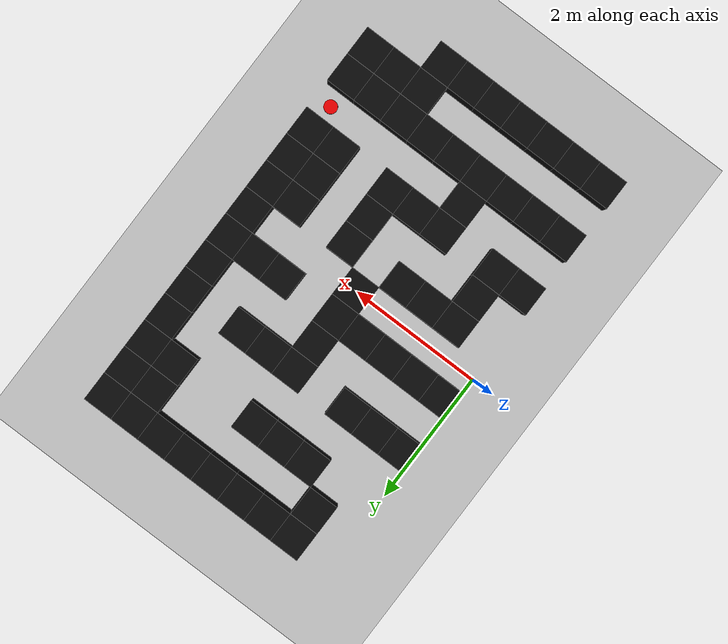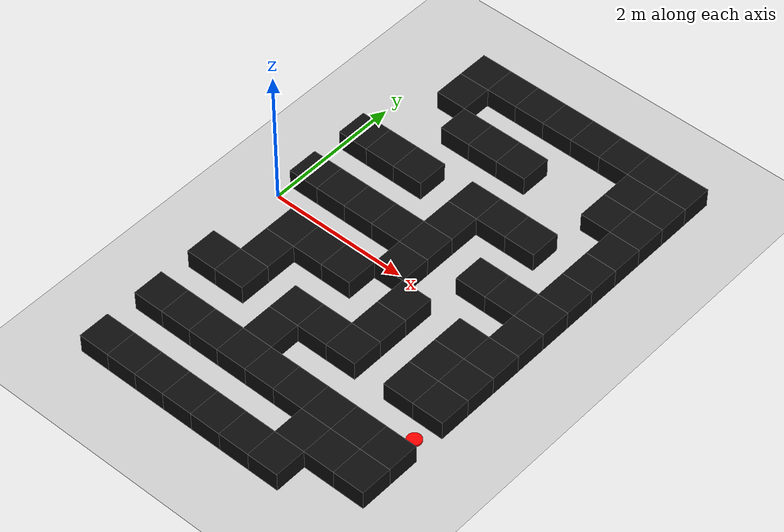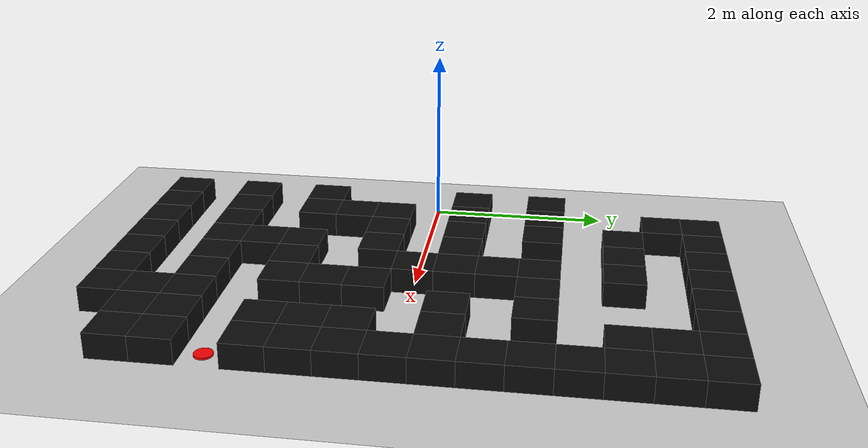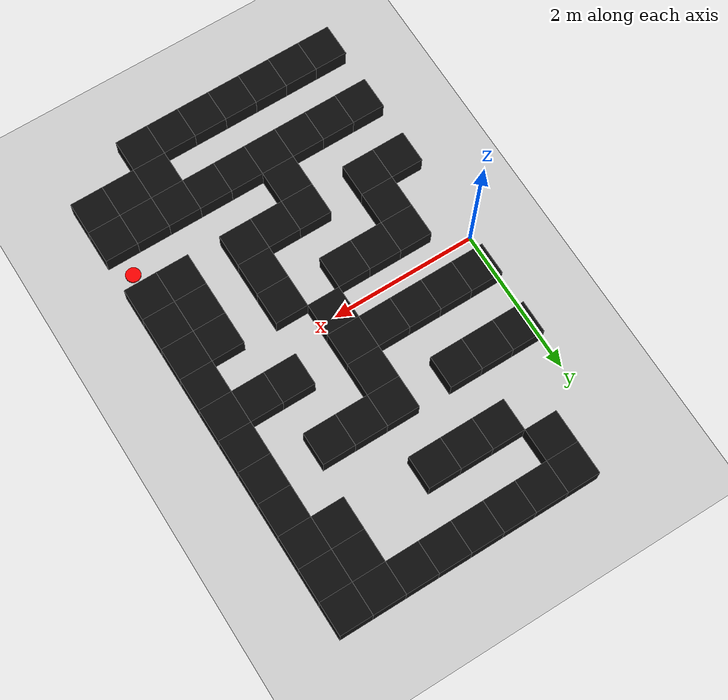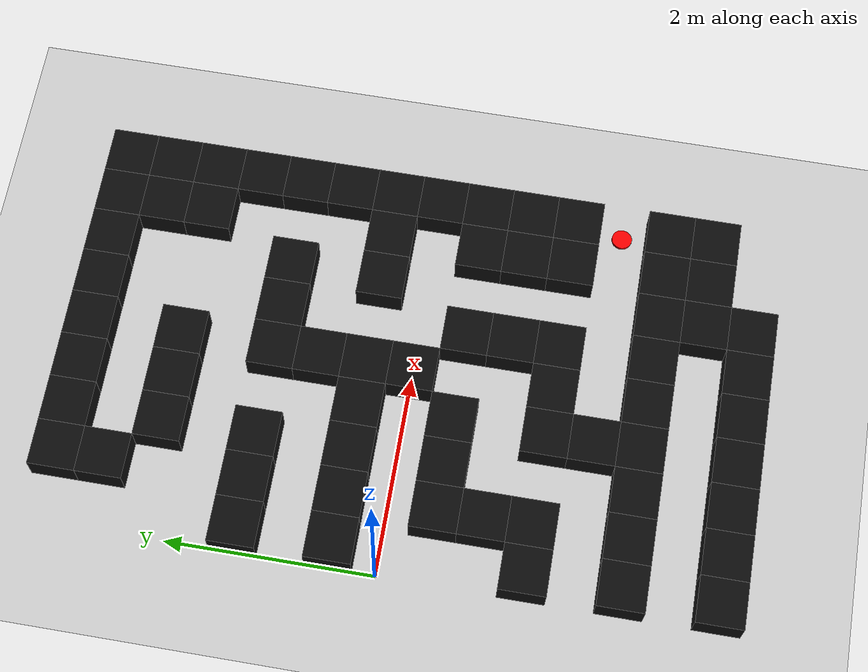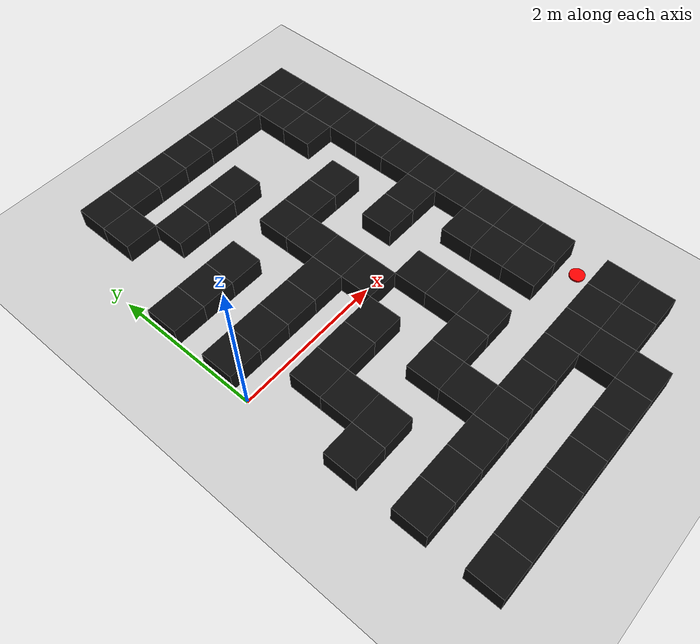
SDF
<sdf version="1.9">
 <world name="complex_maze_world">
  <model name="ground_plane">
   <static>true</static>
   <link name="link">
    <collision name="collision">
     <geometry><plane><normal>0 0 1</normal><size>30 30</size></plane></geometry>
    </collision>
    <visual name="visual">
     <geometry><plane><normal>0 0 1</normal><size>30 30</size></plane></geometry>
     <material><ambient>0.82 0.82 0.82 1</ambient><diffuse>0.82 0.82 0.82 1</diffuse></material>
    </visual>
   </link>
  </model>
  <model name="wall_6">
   <static>true</static>
   <pose>0.675 3.150 0.140 0 0 0</pose>
   <link name="link">
    <collision name="collision"><geometry><box><size>0.450 0.450 0.280</size></box></geometry></collision>
    <visual name="visual">
     <geometry><box><size>0.450 0.450 0.280</size></box></geometry>
     <material><ambient>0.05 0.05 0.05 1</ambient><diffuse>0.05 0.05 0.05 1</diffuse></material>
    </visual>
   </link>
  </model>
  <model name="wall_7">
   <static>true</static>
   <pose>1.125 3.150 0.140 0 0 0</pose>
   <link name="link">
    <collision name="collision"><geometry><box><size>0.450 0.450 0.280</size></box></geometry></collision>
    <visual name="visual">
     <geometry><box><size>0.450 0.450 0.280</size></box></geometry>
     <material><ambient>0.05 0.05 0.05 1</ambient><diffuse>0.05 0.05 0.05 1</diffuse></material>
    </visual>
   </link>
  </model>
  <model name="wall_8">
   <static>true</static>
   <pose>1.575 3.150 0.140 0 0 0</pose>
   <link name="link">
    <collision name="collision"><geometry><box><size>0.450 0.450 0.280</size></box></geometry></collision>
    <visual name="visual">
     <geometry><box><size>0.450 0.450 0.280</size></box></geometry>
     <material><ambient>0.05 0.05 0.05 1</ambient><diffuse>0.05 0.05 0.05 1</diffuse></material>
    </visual>
   </link>
  </model>
  <model name="wall_9">
   <static>true</static>
   <pose>2.025 3.150 0.140 0 0 0</pose>
   <link name="link">
    <collision name="collision"><geometry><box><size>0.450 0.450 0.280</size></box></geometry></collision>
    <visual name="visual">
     <geometry><box><size>0.450 0.450 0.280</size></box></geometry>
     <material><ambient>0.05 0.05 0.05 1</ambient><diffuse>0.05 0.05 0.05 1</diffuse></material>
    </visual>
   </link>
  </model>
  <model name="wall_10">
   <static>true</static>
   <pose>2.475 3.150 0.140 0 0 0</pose>
   <link name="link">
    <collision name="collision"><geometry><box><size>0.450 0.450 0.280</size></box></geometry></collision>
    <visual name="visual">
     <geometry><box><size>0.450 0.450 0.280</size></box></geometry>
     <material><ambient>0.05 0.05 0.05 1</ambient><diffuse>0.05 0.05 0.05 1</diffuse></material>
    </visual>
   </link>
  </model>
  <model name="wall_11">
   <static>true</static>
   <pose>2.925 3.150 0.140 0 0 0</pose>
   <link name="link">
    <collision name="collision"><geometry><box><size>0.450 0.450 0.280</size></box></geometry></collision>
    <visual name="visual">
     <geometry><box><size>0.450 0.450 0.280</size></box></geometry>
     <material><ambient>0.05 0.05 0.05 1</ambient><diffuse>0.05 0.05 0.05 1</diffuse></material>
    </visual>
   </link>
  </model>
  <model name="wall_12">
   <static>true</static>
   <pose>3.375 3.150 0.140 0 0 0</pose>
   <link name="link">
    <collision name="collision"><geometry><box><size>0.450 0.450 0.280</size></box></geometry></collision>
    <visual name="visual">
     <geometry><box><size>0.450 0.450 0.280</size></box></geometry>
     <material><ambient>0.05 0.05 0.05 1</ambient><diffuse>0.05 0.05 0.05 1</diffuse></material>
    </visual>
   </link>
  </model>
  <model name="wall_13">
   <static>true</static>
   <pose>3.825 3.150 0.140 0 0 0</pose>
   <link name="link">
    <collision name="collision"><geometry><box><size>0.450 0.450 0.280</size></box></geometry></collision>
    <visual name="visual">
     <geometry><box><size>0.450 0.450 0.280</size></box></geometry>
     <material><ambient>0.05 0.05 0.05 1</ambient><diffuse>0.05 0.05 0.05 1</diffuse></material>
    </visual>
   </link>
  </model>
  <model name="wall_15">
   <static>true</static>
   <pose>0.675 2.700 0.140 0 0 0</pose>
   <link name="link">
    <collision name="collision"><geometry><box><size>0.450 0.450 0.280</size></box></geometry></collision>
    <visual name="visual">
     <geometry><box><size>0.450 0.450 0.280</size></box></geometry>
     <material><ambient>0.05 0.05 0.05 1</ambient><diffuse>0.05 0.05 0.05 1</diffuse></material>
    </visual>
   </link>
  </model>
  <model name="wall_16">
   <static>true</static>
   <pose>3.375 2.700 0.140 0 0 0</pose>
   <link name="link">
    <collision name="collision"><geometry><box><size>0.450 0.450 0.280</size></box></geometry></collision>
    <visual name="visual">
     <geometry><box><size>0.450 0.450 0.280</size></box></geometry>
     <material><ambient>0.05 0.05 0.05 1</ambient><diffuse>0.05 0.05 0.05 1</diffuse></material>
    </visual>
   </link>
  </model>
  <model name="wall_17">
   <static>true</static>
   <pose>3.825 2.700 0.140 0 0 0</pose>
   <link name="link">
    <collision name="collision"><geometry><box><size>0.450 0.450 0.280</size></box></geometry></collision>
    <visual name="visual">
     <geometry><box><size>0.450 0.450 0.280</size></box></geometry>
     <material><ambient>0.05 0.05 0.05 1</ambient><diffuse>0.05 0.05 0.05 1</diffuse></material>
    </visual>
   </link>
  </model>
  <model name="wall_26">
   <static>true</static>
   <pose>1.125 2.250 0.140 0 0 0</pose>
   <link name="link">
    <collision name="collision"><geometry><box><size>0.450 0.450 0.280</size></box></geometry></collision>
    <visual name="visual">
     <geometry><box><size>0.450 0.450 0.280</size></box></geometry>
     <material><ambient>0.05 0.05 0.05 1</ambient><diffuse>0.05 0.05 0.05 1</diffuse></material>
    </visual>
   </link>
  </model>
  <model name="wall_27">
   <static>true</static>
   <pose>1.575 2.250 0.140 0 0 0</pose>
   <link name="link">
    <collision name="collision"><geometry><box><size>0.450 0.450 0.280</size></box></geometry></collision>
    <visual name="visual">
     <geometry><box><size>0.450 0.450 0.280</size></box></geometry>
     <material><ambient>0.05 0.05 0.05 1</ambient><diffuse>0.05 0.05 0.05 1</diffuse></material>
    </visual>
   </link>
  </model>
  <model name="wall_28">
   <static>true</static>
   <pose>2.025 2.250 0.140 0 0 0</pose>
   <link name="link">
    <collision name="collision"><geometry><box><size>0.450 0.450 0.280</size></box></geometry></collision>
    <visual name="visual">
     <geometry><box><size>0.450 0.450 0.280</size></box></geometry>
     <material><ambient>0.05 0.05 0.05 1</ambient><diffuse>0.05 0.05 0.05 1</diffuse></material>
    </visual>
   </link>
  </model>
  <model name="wall_29">
   <static>true</static>
   <pose>3.375 2.250 0.140 0 0 0</pose>
   <link name="link">
    <collision name="collision"><geometry><box><size>0.450 0.450 0.280</size></box></geometry></collision>
    <visual name="visual">
     <geometry><box><size>0.450 0.450 0.280</size></box></geometry>
     <material><ambient>0.05 0.05 0.05 1</ambient><diffuse>0.05 0.05 0.05 1</diffuse></material>
    </visual>
   </link>
  </model>
  <model name="wall_30">
   <static>true</static>
   <pose>3.825 2.250 0.140 0 0 0</pose>
   <link name="link">
    <collision name="collision"><geometry><box><size>0.450 0.450 0.280</size></box></geometry></collision>
    <visual name="visual">
     <geometry><box><size>0.450 0.450 0.280</size></box></geometry>
     <material><ambient>0.05 0.05 0.05 1</ambient><diffuse>0.05 0.05 0.05 1</diffuse></material>
    </visual>
   </link>
  </model>
  <model name="wall_34">
   <static>true</static>
   <pose>3.825 1.800 0.140 0 0 0</pose>
   <link name="link">
    <collision name="collision"><geometry><box><size>0.450 0.450 0.280</size></box></geometry></collision>
    <visual name="visual">
     <geometry><box><size>0.450 0.450 0.280</size></box></geometry>
     <material><ambient>0.05 0.05 0.05 1</ambient><diffuse>0.05 0.05 0.05 1</diffuse></material>
    </visual>
   </link>
  </model>
  <model name="wall_42">
   <static>true</static>
   <pose>0.225 1.350 0.140 0 0 0</pose>
   <link name="link">
    <collision name="collision"><geometry><box><size>0.450 0.450 0.280</size></box></geometry></collision>
    <visual name="visual">
     <geometry><box><size>0.450 0.450 0.280</size></box></geometry>
     <material><ambient>0.05 0.05 0.05 1</ambient><diffuse>0.05 0.05 0.05 1</diffuse></material>
    </visual>
   </link>
  </model>
  <model name="wall_43">
   <static>true</static>
   <pose>0.675 1.350 0.140 0 0 0</pose>
   <link name="link">
    <collision name="collision"><geometry><box><size>0.450 0.450 0.280</size></box></geometry></collision>
    <visual name="visual">
     <geometry><box><size>0.450 0.450 0.280</size></box></geometry>
     <material><ambient>0.05 0.05 0.05 1</ambient><diffuse>0.05 0.05 0.05 1</diffuse></material>
    </visual>
   </link>
  </model>
  <model name="wall_44">
   <static>true</static>
   <pose>1.125 1.350 0.140 0 0 0</pose>
   <link name="link">
    <collision name="collision"><geometry><box><size>0.450 0.450 0.280</size></box></geometry></collision>
    <visual name="visual">
     <geometry><box><size>0.450 0.450 0.280</size></box></geometry>
     <material><ambient>0.05 0.05 0.05 1</ambient><diffuse>0.05 0.05 0.05 1</diffuse></material>
    </visual>
   </link>
  </model>
  <model name="wall_45">
   <static>true</static>
   <pose>2.025 1.350 0.140 0 0 0</pose>
   <link name="link">
    <collision name="collision"><geometry><box><size>0.450 0.450 0.280</size></box></geometry></collision>
    <visual name="visual">
     <geometry><box><size>0.450 0.450 0.280</size></box></geometry>
     <material><ambient>0.05 0.05 0.05 1</ambient><diffuse>0.05 0.05 0.05 1</diffuse></material>
    </visual>
   </link>
  </model>
  <model name="wall_46">
   <static>true</static>
   <pose>2.475 1.350 0.140 0 0 0</pose>
   <link name="link">
    <collision name="collision"><geometry><box><size>0.450 0.450 0.280</size></box></geometry></collision>
    <visual name="visual">
     <geometry><box><size>0.450 0.450 0.280</size></box></geometry>
     <material><ambient>0.05 0.05 0.05 1</ambient><diffuse>0.05 0.05 0.05 1</diffuse></material>
    </visual>
   </link>
  </model>
  <model name="wall_47">
   <static>true</static>
   <pose>2.925 1.350 0.140 0 0 0</pose>
   <link name="link">
    <collision name="collision"><geometry><box><size>0.450 0.450 0.280</size></box></geometry></collision>
    <visual name="visual">
     <geometry><box><size>0.450 0.450 0.280</size></box></geometry>
     <material><ambient>0.05 0.05 0.05 1</ambient><diffuse>0.05 0.05 0.05 1</diffuse></material>
    </visual>
   </link>
  </model>
  <model name="wall_48">
   <static>true</static>
   <pose>3.825 1.350 0.140 0 0 0</pose>
   <link name="link">
    <collision name="collision"><geometry><box><size>0.450 0.450 0.280</size></box></geometry></collision>
    <visual name="visual">
     <geometry><box><size>0.450 0.450 0.280</size></box></geometry>
     <material><ambient>0.05 0.05 0.05 1</ambient><diffuse>0.05 0.05 0.05 1</diffuse></material>
    </visual>
   </link>
  </model>
  <model name="wall_51">
   <static>true</static>
   <pose>2.025 0.900 0.140 0 0 0</pose>
   <link name="link">
    <collision name="collision"><geometry><box><size>0.450 0.450 0.280</size></box></geometry></collision>
    <visual name="visual">
     <geometry><box><size>0.450 0.450 0.280</size></box></geometry>
     <material><ambient>0.05 0.05 0.05 1</ambient><diffuse>0.05 0.05 0.05 1</diffuse></material>
    </visual>
   </link>
  </model>
  <model name="wall_52">
   <static>true</static>
   <pose>3.825 0.900 0.140 0 0 0</pose>
   <link name="link">
    <collision name="collision"><geometry><box><size>0.450 0.450 0.280</size></box></geometry></collision>
    <visual name="visual">
     <geometry><box><size>0.450 0.450 0.280</size></box></geometry>
     <material><ambient>0.05 0.05 0.05 1</ambient><diffuse>0.05 0.05 0.05 1</diffuse></material>
    </visual>
   </link>
  </model>
  <model name="wall_60">
   <static>true</static>
   <pose>0.225 0.450 0.140 0 0 0</pose>
   <link name="link">
    <collision name="collision"><geometry><box><size>0.450 0.450 0.280</size></box></geometry></collision>
    <visual name="visual">
     <geometry><box><size>0.450 0.450 0.280</size></box></geometry>
     <material><ambient>0.05 0.05 0.05 1</ambient><diffuse>0.05 0.05 0.05 1</diffuse></material>
    </visual>
   </link>
  </model>
  <model name="wall_61">
   <static>true</static>
   <pose>0.675 0.450 0.140 0 0 0</pose>
   <link name="link">
    <collision name="collision"><geometry><box><size>0.450 0.450 0.280</size></box></geometry></collision>
    <visual name="visual">
     <geometry><box><size>0.450 0.450 0.280</size></box></geometry>
     <material><ambient>0.05 0.05 0.05 1</ambient><diffuse>0.05 0.05 0.05 1</diffuse></material>
    </visual>
   </link>
  </model>
  <model name="wall_62">
   <static>true</static>
   <pose>1.125 0.450 0.140 0 0 0</pose>
   <link name="link">
    <collision name="collision"><geometry><box><size>0.450 0.450 0.280</size></box></geometry></collision>
    <visual name="visual">
     <geometry><box><size>0.450 0.450 0.280</size></box></geometry>
     <material><ambient>0.05 0.05 0.05 1</ambient><diffuse>0.05 0.05 0.05 1</diffuse></material>
    </visual>
   </link>
  </model>
  <model name="wall_63">
   <static>true</static>
   <pose>1.575 0.450 0.140 0 0 0</pose>
   <link name="link">
    <collision name="collision"><geometry><box><size>0.450 0.450 0.280</size></box></geometry></collision>
    <visual name="visual">
     <geometry><box><size>0.450 0.450 0.280</size></box></geometry>
     <material><ambient>0.05 0.05 0.05 1</ambient><diffuse>0.05 0.05 0.05 1</diffuse></material>
    </visual>
   </link>
  </model>
  <model name="wall_64">
   <static>true</static>
   <pose>2.025 0.450 0.140 0 0 0</pose>
   <link name="link">
    <collision name="collision"><geometry><box><size>0.450 0.450 0.280</size></box></geometry></collision>
    <visual name="visual">
     <geometry><box><size>0.450 0.450 0.280</size></box></geometry>
     <material><ambient>0.05 0.05 0.05 1</ambient><diffuse>0.05 0.05 0.05 1</diffuse></material>
    </visual>
   </link>
  </model>
  <model name="wall_65">
   <static>true</static>
   <pose>2.925 0.450 0.140 0 0 0</pose>
   <link name="link">
    <collision name="collision"><geometry><box><size>0.450 0.450 0.280</size></box></geometry></collision>
    <visual name="visual">
     <geometry><box><size>0.450 0.450 0.280</size></box></geometry>
     <material><ambient>0.05 0.05 0.05 1</ambient><diffuse>0.05 0.05 0.05 1</diffuse></material>
    </visual>
   </link>
  </model>
  <model name="wall_66">
   <static>true</static>
   <pose>3.375 0.450 0.140 0 0 0</pose>
   <link name="link">
    <collision name="collision"><geometry><box><size>0.450 0.450 0.280</size></box></geometry></collision>
    <visual name="visual">
     <geometry><box><size>0.450 0.450 0.280</size></box></geometry>
     <material><ambient>0.05 0.05 0.05 1</ambient><diffuse>0.05 0.05 0.05 1</diffuse></material>
    </visual>
   </link>
  </model>
  <model name="wall_67">
   <static>true</static>
   <pose>3.825 0.450 0.140 0 0 0</pose>
   <link name="link">
    <collision name="collision"><geometry><box><size>0.450 0.450 0.280</size></box></geometry></collision>
    <visual name="visual">
     <geometry><box><size>0.450 0.450 0.280</size></box></geometry>
     <material><ambient>0.05 0.05 0.05 1</ambient><diffuse>0.05 0.05 0.05 1</diffuse></material>
    </visual>
   </link>
  </model>
  <model name="wall_69">
   <static>true</static>
   <pose>2.025 0.000 0.140 0 0 0</pose>
   <link name="link">
    <collision name="collision"><geometry><box><size>0.450 0.450 0.280</size></box></geometry></collision>
    <visual name="visual">
     <geometry><box><size>0.450 0.450 0.280</size></box></geometry>
     <material><ambient>0.05 0.05 0.05 1</ambient><diffuse>0.05 0.05 0.05 1</diffuse></material>
    </visual>
   </link>
  </model>
  <model name="wall_70">
   <static>true</static>
   <pose>3.825 0.000 0.140 0 0 0</pose>
   <link name="link">
    <collision name="collision"><geometry><box><size>0.450 0.450 0.280</size></box></geometry></collision>
    <visual name="visual">
     <geometry><box><size>0.450 0.450 0.280</size></box></geometry>
     <material><ambient>0.05 0.05 0.05 1</ambient><diffuse>0.05 0.05 0.05 1</diffuse></material>
    </visual>
   </link>
  </model>
  <model name="wall_79">
   <static>true</static>
   <pose>0.675 -0.450 0.140 0 0 0</pose>
   <link name="link">
    <collision name="collision"><geometry><box><size>0.450 0.450 0.280</size></box></geometry></collision>
    <visual name="visual">
     <geometry><box><size>0.450 0.450 0.280</size></box></geometry>
     <material><ambient>0.05 0.05 0.05 1</ambient><diffuse>0.05 0.05 0.05 1</diffuse></material>
    </visual>
   </link>
  </model>
  <model name="wall_80">
   <static>true</static>
   <pose>1.125 -0.450 0.140 0 0 0</pose>
   <link name="link">
    <collision name="collision"><geometry><box><size>0.450 0.450 0.280</size></box></geometry></collision>
    <visual name="visual">
     <geometry><box><size>0.450 0.450 0.280</size></box></geometry>
     <material><ambient>0.05 0.05 0.05 1</ambient><diffuse>0.05 0.05 0.05 1</diffuse></material>
    </visual>
   </link>
  </model>
  <model name="wall_81">
   <static>true</static>
   <pose>1.575 -0.450 0.140 0 0 0</pose>
   <link name="link">
    <collision name="collision"><geometry><box><size>0.450 0.450 0.280</size></box></geometry></collision>
    <visual name="visual">
     <geometry><box><size>0.450 0.450 0.280</size></box></geometry>
     <material><ambient>0.05 0.05 0.05 1</ambient><diffuse>0.05 0.05 0.05 1</diffuse></material>
    </visual>
   </link>
  </model>
  <model name="wall_82">
   <static>true</static>
   <pose>2.475 -0.450 0.140 0 0 0</pose>
   <link name="link">
    <collision name="collision"><geometry><box><size>0.450 0.450 0.280</size></box></geometry></collision>
    <visual name="visual">
     <geometry><box><size>0.450 0.450 0.280</size></box></geometry>
     <material><ambient>0.05 0.05 0.05 1</ambient><diffuse>0.05 0.05 0.05 1</diffuse></material>
    </visual>
   </link>
  </model>
  <model name="wall_83">
   <static>true</static>
   <pose>3.375 -0.450 0.140 0 0 0</pose>
   <link name="link">
    <collision name="collision"><geometry><box><size>0.450 0.450 0.280</size></box></geometry></collision>
    <visual name="visual">
     <geometry><box><size>0.450 0.450 0.280</size></box></geometry>
     <material><ambient>0.05 0.05 0.05 1</ambient><diffuse>0.05 0.05 0.05 1</diffuse></material>
    </visual>
   </link>
  </model>
  <model name="wall_84">
   <static>true</static>
   <pose>3.825 -0.450 0.140 0 0 0</pose>
   <link name="link">
    <collision name="collision"><geometry><box><size>0.450 0.450 0.280</size></box></geometry></collision>
    <visual name="visual">
     <geometry><box><size>0.450 0.450 0.280</size></box></geometry>
     <material><ambient>0.05 0.05 0.05 1</ambient><diffuse>0.05 0.05 0.05 1</diffuse></material>
    </visual>
   </link>
  </model>
  <model name="wall_87">
   <static>true</static>
   <pose>0.675 -0.900 0.140 0 0 0</pose>
   <link name="link">
    <collision name="collision"><geometry><box><size>0.450 0.450 0.280</size></box></geometry></collision>
    <visual name="visual">
     <geometry><box><size>0.450 0.450 0.280</size></box></geometry>
     <material><ambient>0.05 0.05 0.05 1</ambient><diffuse>0.05 0.05 0.05 1</diffuse></material>
    </visual>
   </link>
  </model>
  <model name="wall_88">
   <static>true</static>
   <pose>2.475 -0.900 0.140 0 0 0</pose>
   <link name="link">
    <collision name="collision"><geometry><box><size>0.450 0.450 0.280</size></box></geometry></collision>
    <visual name="visual">
     <geometry><box><size>0.450 0.450 0.280</size></box></geometry>
     <material><ambient>0.05 0.05 0.05 1</ambient><diffuse>0.05 0.05 0.05 1</diffuse></material>
    </visual>
   </link>
  </model>
  <model name="wall_89">
   <static>true</static>
   <pose>3.375 -0.900 0.140 0 0 0</pose>
   <link name="link">
    <collision name="collision"><geometry><box><size>0.450 0.450 0.280</size></box></geometry></collision>
    <visual name="visual">
     <geometry><box><size>0.450 0.450 0.280</size></box></geometry>
     <material><ambient>0.05 0.05 0.05 1</ambient><diffuse>0.05 0.05 0.05 1</diffuse></material>
    </visual>
   </link>
  </model>
  <model name="wall_90">
   <static>true</static>
   <pose>3.825 -0.900 0.140 0 0 0</pose>
   <link name="link">
    <collision name="collision"><geometry><box><size>0.450 0.450 0.280</size></box></geometry></collision>
    <visual name="visual">
     <geometry><box><size>0.450 0.450 0.280</size></box></geometry>
     <material><ambient>0.05 0.05 0.05 1</ambient><diffuse>0.05 0.05 0.05 1</diffuse></material>
    </visual>
   </link>
  </model>
  <model name="wall_98">
   <static>true</static>
   <pose>0.225 -1.350 0.140 0 0 0</pose>
   <link name="link">
    <collision name="collision"><geometry><box><size>0.450 0.450 0.280</size></box></geometry></collision>
    <visual name="visual">
     <geometry><box><size>0.450 0.450 0.280</size></box></geometry>
     <material><ambient>0.05 0.05 0.05 1</ambient><diffuse>0.05 0.05 0.05 1</diffuse></material>
    </visual>
   </link>
  </model>
  <model name="wall_99">
   <static>true</static>
   <pose>0.675 -1.350 0.140 0 0 0</pose>
   <link name="link">
    <collision name="collision"><geometry><box><size>0.450 0.450 0.280</size></box></geometry></collision>
    <visual name="visual">
     <geometry><box><size>0.450 0.450 0.280</size></box></geometry>
     <material><ambient>0.05 0.05 0.05 1</ambient><diffuse>0.05 0.05 0.05 1</diffuse></material>
    </visual>
   </link>
  </model>
  <model name="wall_100">
   <static>true</static>
   <pose>1.575 -1.350 0.140 0 0 0</pose>
   <link name="link">
    <collision name="collision"><geometry><box><size>0.450 0.450 0.280</size></box></geometry></collision>
    <visual name="visual">
     <geometry><box><size>0.450 0.450 0.280</size></box></geometry>
     <material><ambient>0.05 0.05 0.05 1</ambient><diffuse>0.05 0.05 0.05 1</diffuse></material>
    </visual>
   </link>
  </model>
  <model name="wall_101">
   <static>true</static>
   <pose>2.025 -1.350 0.140 0 0 0</pose>
   <link name="link">
    <collision name="collision"><geometry><box><size>0.450 0.450 0.280</size></box></geometry></collision>
    <visual name="visual">
     <geometry><box><size>0.450 0.450 0.280</size></box></geometry>
     <material><ambient>0.05 0.05 0.05 1</ambient><diffuse>0.05 0.05 0.05 1</diffuse></material>
    </visual>
   </link>
  </model>
  <model name="wall_102">
   <static>true</static>
   <pose>2.475 -1.350 0.140 0 0 0</pose>
   <link name="link">
    <collision name="collision"><geometry><box><size>0.450 0.450 0.280</size></box></geometry></collision>
    <visual name="visual">
     <geometry><box><size>0.450 0.450 0.280</size></box></geometry>
     <material><ambient>0.05 0.05 0.05 1</ambient><diffuse>0.05 0.05 0.05 1</diffuse></material>
    </visual>
   </link>
  </model>
  <model name="wall_103">
   <static>true</static>
   <pose>3.375 -1.350 0.140 0 0 0</pose>
   <link name="link">
    <collision name="collision"><geometry><box><size>0.450 0.450 0.280</size></box></geometry></collision>
    <visual name="visual">
     <geometry><box><size>0.450 0.450 0.280</size></box></geometry>
     <material><ambient>0.05 0.05 0.05 1</ambient><diffuse>0.05 0.05 0.05 1</diffuse></material>
    </visual>
   </link>
  </model>
  <model name="wall_104">
   <static>true</static>
   <pose>3.825 -1.350 0.140 0 0 0</pose>
   <link name="link">
    <collision name="collision"><geometry><box><size>0.450 0.450 0.280</size></box></geometry></collision>
    <visual name="visual">
     <geometry><box><size>0.450 0.450 0.280</size></box></geometry>
     <material><ambient>0.05 0.05 0.05 1</ambient><diffuse>0.05 0.05 0.05 1</diffuse></material>
    </visual>
   </link>
  </model>
  <model name="wall_107">
   <static>true</static>
   <pose>1.575 -1.800 0.140 0 0 0</pose>
   <link name="link">
    <collision name="collision"><geometry><box><size>0.450 0.450 0.280</size></box></geometry></collision>
    <visual name="visual">
     <geometry><box><size>0.450 0.450 0.280</size></box></geometry>
     <material><ambient>0.05 0.05 0.05 1</ambient><diffuse>0.05 0.05 0.05 1</diffuse></material>
    </visual>
   </link>
  </model>
  <model name="goal_marker">
   <static>true</static>
   <pose>3.825 -1.800 0.012 0 0 0</pose>
   <link name="link">
    <visual name="visual">
     <geometry><cylinder><radius>0.099</radius><length>0.024</length></cylinder></geometry>
     <material><ambient>1 0 0 1</ambient><diffuse>1 0 0 1</diffuse></material>
    </visual>
   </link>
  </model>
  <model name="wall_116">
   <static>true</static>
   <pose>0.225 -2.250 0.140 0 0 0</pose>
   <link name="link">
    <collision name="collision"><geometry><box><size>0.450 0.450 0.280</size></box></geometry></collision>
    <visual name="visual">
     <geometry><box><size>0.450 0.450 0.280</size></box></geometry>
     <material><ambient>0.05 0.05 0.05 1</ambient><diffuse>0.05 0.05 0.05 1</diffuse></material>
    </visual>
   </link>
  </model>
  <model name="wall_117">
   <static>true</static>
   <pose>0.675 -2.250 0.140 0 0 0</pose>
   <link name="link">
    <collision name="collision"><geometry><box><size>0.450 0.450 0.280</size></box></geometry></collision>
    <visual name="visual">
     <geometry><box><size>0.450 0.450 0.280</size></box></geometry>
     <material><ambient>0.05 0.05 0.05 1</ambient><diffuse>0.05 0.05 0.05 1</diffuse></material>
    </visual>
   </link>
  </model>
  <model name="wall_118">
   <static>true</static>
   <pose>1.125 -2.250 0.140 0 0 0</pose>
   <link name="link">
    <collision name="collision"><geometry><box><size>0.450 0.450 0.280</size></box></geometry></collision>
    <visual name="visual">
     <geometry><box><size>0.450 0.450 0.280</size></box></geometry>
     <material><ambient>0.05 0.05 0.05 1</ambient><diffuse>0.05 0.05 0.05 1</diffuse></material>
    </visual>
   </link>
  </model>
  <model name="wall_119">
   <static>true</static>
   <pose>1.575 -2.250 0.140 0 0 0</pose>
   <link name="link">
    <collision name="collision"><geometry><box><size>0.450 0.450 0.280</size></box></geometry></collision>
    <visual name="visual">
     <geometry><box><size>0.450 0.450 0.280</size></box></geometry>
     <material><ambient>0.05 0.05 0.05 1</ambient><diffuse>0.05 0.05 0.05 1</diffuse></material>
    </visual>
   </link>
  </model>
  <model name="wall_120">
   <static>true</static>
   <pose>2.025 -2.250 0.140 0 0 0</pose>
   <link name="link">
    <collision name="collision"><geometry><box><size>0.450 0.450 0.280</size></box></geometry></collision>
    <visual name="visual">
     <geometry><box><size>0.450 0.450 0.280</size></box></geometry>
     <material><ambient>0.05 0.05 0.05 1</ambient><diffuse>0.05 0.05 0.05 1</diffuse></material>
    </visual>
   </link>
  </model>
  <model name="wall_121">
   <static>true</static>
   <pose>2.475 -2.250 0.140 0 0 0</pose>
   <link name="link">
    <collision name="collision"><geometry><box><size>0.450 0.450 0.280</size></box></geometry></collision>
    <visual name="visual">
     <geometry><box><size>0.450 0.450 0.280</size></box></geometry>
     <material><ambient>0.05 0.05 0.05 1</ambient><diffuse>0.05 0.05 0.05 1</diffuse></material>
    </visual>
   </link>
  </model>
  <model name="wall_122">
   <static>true</static>
   <pose>2.925 -2.250 0.140 0 0 0</pose>
   <link name="link">
    <collision name="collision"><geometry><box><size>0.450 0.450 0.280</size></box></geometry></collision>
    <visual name="visual">
     <geometry><box><size>0.450 0.450 0.280</size></box></geometry>
     <material><ambient>0.05 0.05 0.05 1</ambient><diffuse>0.05 0.05 0.05 1</diffuse></material>
    </visual>
   </link>
  </model>
  <model name="wall_123">
   <static>true</static>
   <pose>3.375 -2.250 0.140 0 0 0</pose>
   <link name="link">
    <collision name="collision"><geometry><box><size>0.450 0.450 0.280</size></box></geometry></collision>
    <visual name="visual">
     <geometry><box><size>0.450 0.450 0.280</size></box></geometry>
     <material><ambient>0.05 0.05 0.05 1</ambient><diffuse>0.05 0.05 0.05 1</diffuse></material>
    </visual>
   </link>
  </model>
  <model name="wall_124">
   <static>true</static>
   <pose>3.825 -2.250 0.140 0 0 0</pose>
   <link name="link">
    <collision name="collision"><geometry><box><size>0.450 0.450 0.280</size></box></geometry></collision>
    <visual name="visual">
     <geometry><box><size>0.450 0.450 0.280</size></box></geometry>
     <material><ambient>0.05 0.05 0.05 1</ambient><diffuse>0.05 0.05 0.05 1</diffuse></material>
    </visual>
   </link>
  </model>
  <model name="wall_126">
   <static>true</static>
   <pose>2.925 -2.700 0.140 0 0 0</pose>
   <link name="link">
    <collision name="collision"><geometry><box><size>0.450 0.450 0.280</size></box></geometry></collision>
    <visual name="visual">
     <geometry><box><size>0.450 0.450 0.280</size></box></geometry>
     <material><ambient>0.05 0.05 0.05 1</ambient><diffuse>0.05 0.05 0.05 1</diffuse></material>
    </visual>
   </link>
  </model>
  <model name="wall_127">
   <static>true</static>
   <pose>3.375 -2.700 0.140 0 0 0</pose>
   <link name="link">
    <collision name="collision"><geometry><box><size>0.450 0.450 0.280</size></box></geometry></collision>
    <visual name="visual">
     <geometry><box><size>0.450 0.450 0.280</size></box></geometry>
     <material><ambient>0.05 0.05 0.05 1</ambient><diffuse>0.05 0.05 0.05 1</diffuse></material>
    </visual>
   </link>
  </model>
  <model name="wall_128">
   <static>true</static>
   <pose>3.825 -2.700 0.140 0 0 0</pose>
   <link name="link">
    <collision name="collision"><geometry><box><size>0.450 0.450 0.280</size></box></geometry></collision>
    <visual name="visual">
     <geometry><box><size>0.450 0.450 0.280</size></box></geometry>
     <material><ambient>0.05 0.05 0.05 1</ambient><diffuse>0.05 0.05 0.05 1</diffuse></material>
    </visual>
   </link>
  </model>
  <model name="wall_138">
   <static>true</static>
   <pose>0.225 -3.150 0.140 0 0 0</pose>
   <link name="link">
    <collision name="collision"><geometry><box><size>0.450 0.450 0.280</size></box></geometry></collision>
    <visual name="visual">
     <geometry><box><size>0.450 0.450 0.280</size></box></geometry>
     <material><ambient>0.05 0.05 0.05 1</ambient><diffuse>0.05 0.05 0.05 1</diffuse></material>
    </visual>
   </link>
  </model>
  <model name="wall_139">
   <static>true</static>
   <pose>0.675 -3.150 0.140 0 0 0</pose>
   <link name="link">
    <collision name="collision"><geometry><box><size>0.450 0.450 0.280</size></box></geometry></collision>
    <visual name="visual">
     <geometry><box><size>0.450 0.450 0.280</size></box></geometry>
     <material><ambient>0.05 0.05 0.05 1</ambient><diffuse>0.05 0.05 0.05 1</diffuse></material>
    </visual>
   </link>
  </model>
  <model name="wall_140">
   <static>true</static>
   <pose>1.125 -3.150 0.140 0 0 0</pose>
   <link name="link">
    <collision name="collision"><geometry><box><size>0.450 0.450 0.280</size></box></geometry></collision>
    <visual name="visual">
     <geometry><box><size>0.450 0.450 0.280</size></box></geometry>
     <material><ambient>0.05 0.05 0.05 1</ambient><diffuse>0.05 0.05 0.05 1</diffuse></material>
    </visual>
   </link>
  </model>
  <model name="wall_141">
   <static>true</static>
   <pose>1.575 -3.150 0.140 0 0 0</pose>
   <link name="link">
    <collision name="collision"><geometry><box><size>0.450 0.450 0.280</size></box></geometry></collision>
    <visual name="visual">
     <geometry><box><size>0.450 0.450 0.280</size></box></geometry>
     <material><ambient>0.05 0.05 0.05 1</ambient><diffuse>0.05 0.05 0.05 1</diffuse></material>
    </visual>
   </link>
  </model>
  <model name="wall_142">
   <static>true</static>
   <pose>2.025 -3.150 0.140 0 0 0</pose>
   <link name="link">
    <collision name="collision"><geometry><box><size>0.450 0.450 0.280</size></box></geometry></collision>
    <visual name="visual">
     <geometry><box><size>0.450 0.450 0.280</size></box></geometry>
     <material><ambient>0.05 0.05 0.05 1</ambient><diffuse>0.05 0.05 0.05 1</diffuse></material>
    </visual>
   </link>
  </model>
  <model name="wall_143">
   <static>true</static>
   <pose>2.475 -3.150 0.140 0 0 0</pose>
   <link name="link">
    <collision name="collision"><geometry><box><size>0.450 0.450 0.280</size></box></geometry></collision>
    <visual name="visual">
     <geometry><box><size>0.450 0.450 0.280</size></box></geometry>
     <material><ambient>0.05 0.05 0.05 1</ambient><diffuse>0.05 0.05 0.05 1</diffuse></material>
    </visual>
   </link>
  </model>
  <model name="wall_144">
   <static>true</static>
   <pose>2.925 -3.150 0.140 0 0 0</pose>
   <link name="link">
    <collision name="collision"><geometry><box><size>0.450 0.450 0.280</size></box></geometry></collision>
    <visual name="visual">
     <geometry><box><size>0.450 0.450 0.280</size></box></geometry>
     <material><ambient>0.05 0.05 0.05 1</ambient><diffuse>0.05 0.05 0.05 1</diffuse></material>
    </visual>
   </link>
  </model>
 </world>
</sdf>
